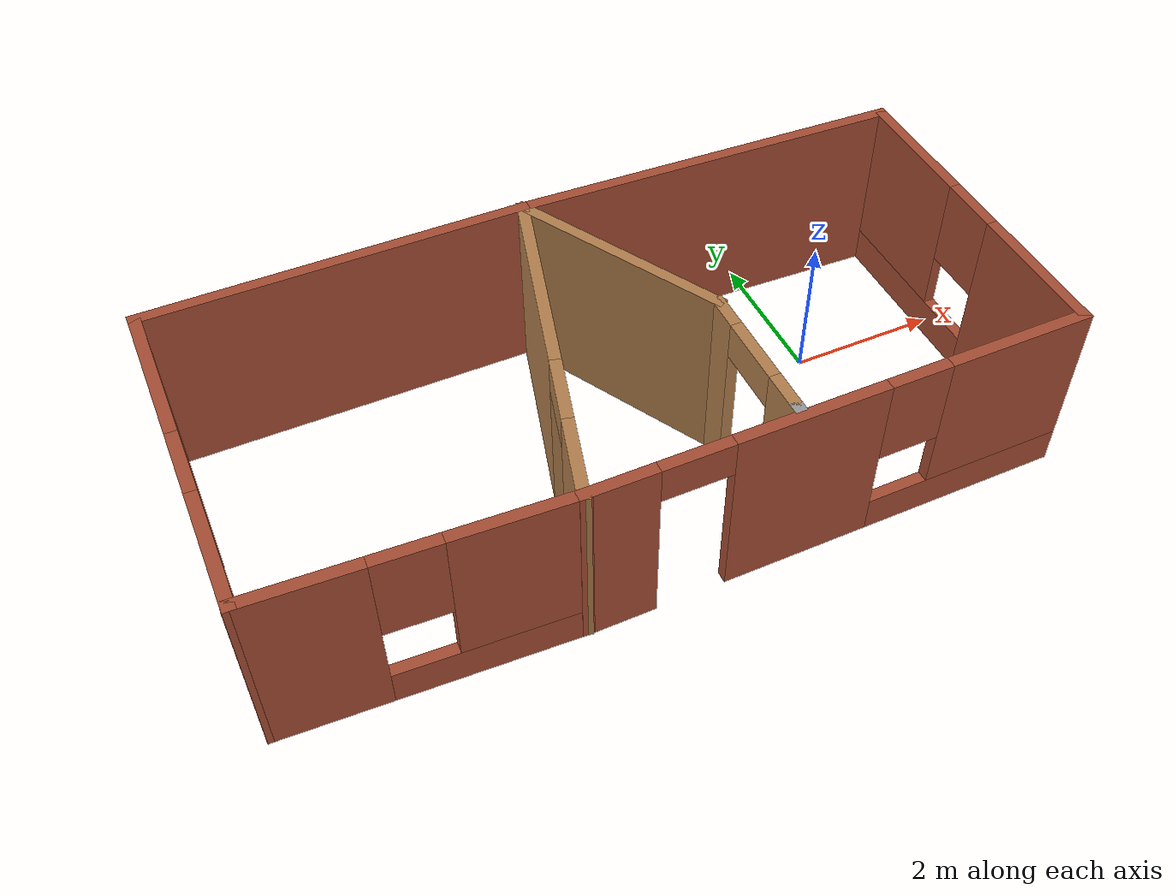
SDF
<?xml version='1.0'?>
<sdf version='1.6'>
  <model name='Building'>
    <pose frame=''>-3.08248 -0.442709 0 0 -0 0</pose>
    <link name='Wall_0'>
      <pose frame=''>-0.74947 -0.00521 0 0 0 -1.82746</pose>
      <visual name='Wall_0_Visual_0'>
        <pose frame=''>-1.02031 0 1.25 0 -0 0</pose>
        <geometry>
          <box>
            <size>2.79932 0.15 2.5</size>
          </box>
        </geometry>
        <material>
          <script>
            <uri>file://media/materials/scripts/gazebo.material</uri>
            <name>Gazebo/Wood</name>
          </script>
          <ambient>1 0.764706 0.305882 1</ambient>
        </material>
        <meta>
          <layer>0</layer>
        </meta>
      </visual>
      <collision name='Wall_0_Collision_0'>
        <geometry>
          <box>
            <size>2.79932 0.15 2.5</size>
          </box>
        </geometry>
        <pose frame=''>-1.02031 0 1.25 0 -0 0</pose>
      </collision>
      <visual name='Wall_0_Visual_1'>
        <pose frame=''>1.84966 0 1.25 0 -0 0</pose>
        <geometry>
          <box>
            <size>1.14062 0.15 2.5</size>
          </box>
        </geometry>
        <material>
          <script>
            <uri>file://media/materials/scripts/gazebo.material</uri>
            <name>Gazebo/Wood</name>
          </script>
          <ambient>1 0.764706 0.305882 1</ambient>
        </material>
        <meta>
          <layer>0</layer>
        </meta>
      </visual>
      <collision name='Wall_0_Collision_1'>
        <geometry>
          <box>
            <size>1.14062 0.15 2.5</size>
          </box>
        </geometry>
        <pose frame=''>1.84966 0 1.25 0 -0 0</pose>
      </collision>
      <visual name='Wall_0_Visual_2'>
        <pose frame=''>0.829352 0 2.25 0 -0 0</pose>
        <geometry>
          <box>
            <size>0.9 0.15 0.5</size>
          </box>
        </geometry>
        <material>
          <script>
            <uri>file://media/materials/scripts/gazebo.material</uri>
            <name>Gazebo/Wood</name>
          </script>
          <ambient>1 0.764706 0.305882 1</ambient>
        </material>
        <meta>
          <layer>0</layer>
        </meta>
      </visual>
      <collision name='Wall_0_Collision_2'>
        <geometry>
          <box>
            <size>0.9 0.15 0.5</size>
          </box>
        </geometry>
        <pose frame=''>0.829352 0 2.25 0 -0 0</pose>
      </collision>
    </link>
    <link name='Wall_1'>
      <pose frame=''>1.83025 -2.27336 0 0 -0 0</pose>
      <visual name='Wall_1_Visual_0'>
        <pose frame=''>-2.78114 0 1.25 0 -0 0</pose>
        <geometry>
          <box>
            <size>0.93771 0.15 2.5</size>
          </box>
        </geometry>
        <material>
          <script>
            <uri>file://media/materials/scripts/gazebo.material</uri>
            <name>Gazebo/Bricks</name>
          </script>
          <ambient>0.435294 0.796078 0.67451 1</ambient>
        </material>
        <meta>
          <layer>0</layer>
        </meta>
      </visual>
      <collision name='Wall_1_Collision_0'>
        <geometry>
          <box>
            <size>0.93771 0.15 2.5</size>
          </box>
        </geometry>
        <pose frame=''>-2.78114 0 1.25 0 -0 0</pose>
      </collision>
      <visual name='Wall_1_Visual_1'>
        <pose frame=''>-0.440127 0 1.25 0 -0 0</pose>
        <geometry>
          <box>
            <size>1.94433 0.15 2.5</size>
          </box>
        </geometry>
        <material>
          <script>
            <uri>file://media/materials/scripts/gazebo.material</uri>
            <name>Gazebo/Bricks</name>
          </script>
          <ambient>0.435294 0.796078 0.67451 1</ambient>
        </material>
        <meta>
          <layer>0</layer>
        </meta>
      </visual>
      <collision name='Wall_1_Collision_1'>
        <geometry>
          <box>
            <size>1.94433 0.15 2.5</size>
          </box>
        </geometry>
        <pose frame=''>-0.440127 0 1.25 0 -0 0</pose>
      </collision>
      <visual name='Wall_1_Visual_2'>
        <pose frame=''>1.89102 0 0.25 0 -0 0</pose>
        <geometry>
          <box>
            <size>2.71796 0.15 0.5</size>
          </box>
        </geometry>
        <material>
          <script>
            <uri>file://media/materials/scripts/gazebo.material</uri>
            <name>Gazebo/Bricks</name>
          </script>
          <ambient>0.435294 0.796078 0.67451 1</ambient>
        </material>
        <meta>
          <layer>0</layer>
        </meta>
      </visual>
      <collision name='Wall_1_Collision_2'>
        <geometry>
          <box>
            <size>2.71796 0.15 0.5</size>
          </box>
        </geometry>
        <pose frame=''>1.89102 0 0.25 0 -0 0</pose>
      </collision>
      <visual name='Wall_1_Visual_3'>
        <pose frame=''>2.29102 0 1.5 0 -0 0</pose>
        <geometry>
          <box>
            <size>1.91796 0.15 2</size>
          </box>
        </geometry>
        <material>
          <script>
            <uri>file://media/materials/scripts/gazebo.material</uri>
            <name>Gazebo/Bricks</name>
          </script>
          <ambient>0.435294 0.796078 0.67451 1</ambient>
        </material>
        <meta>
          <layer>0</layer>
        </meta>
      </visual>
      <collision name='Wall_1_Collision_3'>
        <geometry>
          <box>
            <size>1.91796 0.15 2</size>
          </box>
        </geometry>
        <pose frame=''>2.29102 0 1.5 0 -0 0</pose>
      </collision>
      <visual name='Wall_1_Visual_4'>
        <pose frame=''>0.932036 0 1.9 0 -0 0</pose>
        <geometry>
          <box>
            <size>0.8 0.15 1.2</size>
          </box>
        </geometry>
        <material>
          <script>
            <uri>file://media/materials/scripts/gazebo.material</uri>
            <name>Gazebo/Bricks</name>
          </script>
          <ambient>0.435294 0.796078 0.67451 1</ambient>
        </material>
        <meta>
          <layer>0</layer>
        </meta>
      </visual>
      <collision name='Wall_1_Collision_4'>
        <geometry>
          <box>
            <size>0.8 0.15 1.2</size>
          </box>
        </geometry>
        <pose frame=''>0.932036 0 1.9 0 -0 0</pose>
      </collision>
      <visual name='Wall_1_Visual_5'>
        <pose frame=''>-1.86229 0 2.25 0 -0 0</pose>
        <geometry>
          <box>
            <size>0.9 0.15 0.5</size>
          </box>
        </geometry>
        <material>
          <script>
            <uri>file://media/materials/scripts/gazebo.material</uri>
            <name>Gazebo/Bricks</name>
          </script>
          <ambient>0.435294 0.796078 0.67451 1</ambient>
        </material>
        <meta>
          <layer>0</layer>
        </meta>
      </visual>
      <collision name='Wall_1_Collision_5'>
        <geometry>
          <box>
            <size>0.9 0.15 0.5</size>
          </box>
        </geometry>
        <pose frame=''>-1.86229 0 2.25 0 -0 0</pose>
      </collision>
    </link>
    <link name='Wall_12'>
      <collision name='Wall_12_Collision'>
        <geometry>
          <box>
            <size>5 0.15 2.5</size>
          </box>
        </geometry>
        <pose frame=''>0 0 1.25 0 -0 0</pose>
      </collision>
      <visual name='Wall_12_Visual'>
        <pose frame=''>0 0 1.25 0 -0 0</pose>
        <geometry>
          <box>
            <size>5 0.15 2.5</size>
          </box>
        </geometry>
        <material>
          <script>
            <uri>file://media/materials/scripts/gazebo.material</uri>
            <name>Gazebo/Bricks</name>
          </script>
          <ambient>0.435294 0.796078 0.67451 1</ambient>
        </material>
        <meta>
          <layer>0</layer>
        </meta>
      </visual>
      <pose frame=''>-2.57919 2.26294 0 0 -0 3.14159</pose>
    </link>
    <link name='Wall_13'>
      <pose frame=''>-5.00419 0.087943 0 0 0 -1.5708</pose>
      <visual name='Wall_13_Visual_0'>
        <pose frame=''>-1.25822 0 1.25 0 -0 0</pose>
        <geometry>
          <box>
            <size>1.98357 0.15 2.5</size>
          </box>
        </geometry>
        <material>
          <script>
            <uri>file://media/materials/scripts/gazebo.material</uri>
            <name>Gazebo/Bricks</name>
          </script>
          <ambient>0.435294 0.796078 0.67451 1</ambient>
        </material>
        <meta>
          <layer>0</layer>
        </meta>
      </visual>
      <collision name='Wall_13_Collision_0'>
        <geometry>
          <box>
            <size>1.98357 0.15 2.5</size>
          </box>
        </geometry>
        <pose frame=''>-1.25822 0 1.25 0 -0 0</pose>
      </collision>
      <visual name='Wall_13_Visual_1'>
        <pose frame=''>1.44179 0 1.25 0 -0 0</pose>
        <geometry>
          <box>
            <size>1.61643 0.15 2.5</size>
          </box>
        </geometry>
        <material>
          <script>
            <uri>file://media/materials/scripts/gazebo.material</uri>
            <name>Gazebo/Bricks</name>
          </script>
          <ambient>0.435294 0.796078 0.67451 1</ambient>
        </material>
        <meta>
          <layer>0</layer>
        </meta>
      </visual>
      <collision name='Wall_13_Collision_1'>
        <geometry>
          <box>
            <size>1.61643 0.15 2.5</size>
          </box>
        </geometry>
        <pose frame=''>1.44179 0 1.25 0 -0 0</pose>
      </collision>
      <visual name='Wall_13_Visual_2'>
        <pose frame=''>0.183571 0 2.25 0 -0 0</pose>
        <geometry>
          <box>
            <size>0.9 0.15 0.5</size>
          </box>
        </geometry>
        <material>
          <script>
            <uri>file://media/materials/scripts/gazebo.material</uri>
            <name>Gazebo/Bricks</name>
          </script>
          <ambient>0.435294 0.796078 0.67451 1</ambient>
        </material>
        <meta>
          <layer>0</layer>
        </meta>
      </visual>
      <collision name='Wall_13_Collision_2'>
        <geometry>
          <box>
            <size>0.9 0.15 0.5</size>
          </box>
        </geometry>
        <pose frame=''>0.183571 0 2.25 0 -0 0</pose>
      </collision>
    </link>
    <link name='Wall_14'>
      <pose frame=''>-3.17447 -2.18021 0 0 0 -0.050867</pose>
      <visual name='Wall_14_Visual_0'>
        <pose frame=''>-1.18713 0 1.25 0 -0 0</pose>
        <geometry>
          <box>
            <size>1.43991 0.15 2.5</size>
          </box>
        </geometry>
        <material>
          <script>
            <uri>file://media/materials/scripts/gazebo.material</uri>
            <name>Gazebo/Bricks</name>
          </script>
          <ambient>0.435294 0.796078 0.67451 1</ambient>
        </material>
        <meta>
          <layer>0</layer>
        </meta>
      </visual>
      <collision name='Wall_14_Collision_0'>
        <geometry>
          <box>
            <size>1.43991 0.15 2.5</size>
          </box>
        </geometry>
        <pose frame=''>-1.18713 0 1.25 0 -0 0</pose>
      </collision>
      <visual name='Wall_14_Visual_1'>
        <pose frame=''>0.719954 0 0.25 0 -0 0</pose>
        <geometry>
          <box>
            <size>2.37426 0.15 0.5</size>
          </box>
        </geometry>
        <material>
          <script>
            <uri>file://media/materials/scripts/gazebo.material</uri>
            <name>Gazebo/Bricks</name>
          </script>
          <ambient>0.435294 0.796078 0.67451 1</ambient>
        </material>
        <meta>
          <layer>0</layer>
        </meta>
      </visual>
      <collision name='Wall_14_Collision_1'>
        <geometry>
          <box>
            <size>2.37426 0.15 0.5</size>
          </box>
        </geometry>
        <pose frame=''>0.719954 0 0.25 0 -0 0</pose>
      </collision>
      <visual name='Wall_14_Visual_2'>
        <pose frame=''>1.11995 0 1.5 0 -0 0</pose>
        <geometry>
          <box>
            <size>1.57426 0.15 2</size>
          </box>
        </geometry>
        <material>
          <script>
            <uri>file://media/materials/scripts/gazebo.material</uri>
            <name>Gazebo/Bricks</name>
          </script>
          <ambient>0.435294 0.796078 0.67451 1</ambient>
        </material>
        <meta>
          <layer>0</layer>
        </meta>
      </visual>
      <collision name='Wall_14_Collision_2'>
        <geometry>
          <box>
            <size>1.57426 0.15 2</size>
          </box>
        </geometry>
        <pose frame=''>1.11995 0 1.5 0 -0 0</pose>
      </collision>
      <visual name='Wall_14_Visual_3'>
        <pose frame=''>-0.067178 0 1.9 0 -0 0</pose>
        <geometry>
          <box>
            <size>0.8 0.15 1.2</size>
          </box>
        </geometry>
        <material>
          <script>
            <uri>file://media/materials/scripts/gazebo.material</uri>
            <name>Gazebo/Bricks</name>
          </script>
          <ambient>0.435294 0.796078 0.67451 1</ambient>
        </material>
        <meta>
          <layer>0</layer>
        </meta>
      </visual>
      <collision name='Wall_14_Collision_3'>
        <geometry>
          <box>
            <size>0.8 0.15 1.2</size>
          </box>
        </geometry>
        <pose frame=''>-0.067178 0 1.9 0 -0 0</pose>
      </collision>
    </link>
    <link name='Wall_2'>
      <pose frame=''>5.00525 -0.098364 0 0 -0 1.5708</pose>
      <visual name='Wall_2_Visual_0'>
        <pose frame=''>-1.30717 0 1.25 0 -0 0</pose>
        <geometry>
          <box>
            <size>1.88565 0.15 2.5</size>
          </box>
        </geometry>
        <material>
          <script>
            <uri>file://media/materials/scripts/gazebo.material</uri>
            <name>Gazebo/Bricks</name>
          </script>
          <ambient>0.435294 0.796078 0.67451 1</ambient>
        </material>
        <meta>
          <layer>0</layer>
        </meta>
      </visual>
      <collision name='Wall_2_Collision_0'>
        <geometry>
          <box>
            <size>1.88565 0.15 2.5</size>
          </box>
        </geometry>
        <pose frame=''>-1.30717 0 1.25 0 -0 0</pose>
      </collision>
      <visual name='Wall_2_Visual_1'>
        <pose frame=''>0.942826 0 0.25 0 -0 0</pose>
        <geometry>
          <box>
            <size>2.61435 0.15 0.5</size>
          </box>
        </geometry>
        <material>
          <script>
            <uri>file://media/materials/scripts/gazebo.material</uri>
            <name>Gazebo/Bricks</name>
          </script>
          <ambient>0.435294 0.796078 0.67451 1</ambient>
        </material>
        <meta>
          <layer>0</layer>
        </meta>
      </visual>
      <collision name='Wall_2_Collision_1'>
        <geometry>
          <box>
            <size>2.61435 0.15 0.5</size>
          </box>
        </geometry>
        <pose frame=''>0.942826 0 0.25 0 -0 0</pose>
      </collision>
      <visual name='Wall_2_Visual_2'>
        <pose frame=''>1.34283 0 1.5 0 -0 0</pose>
        <geometry>
          <box>
            <size>1.81435 0.15 2</size>
          </box>
        </geometry>
        <material>
          <script>
            <uri>file://media/materials/scripts/gazebo.material</uri>
            <name>Gazebo/Bricks</name>
          </script>
          <ambient>0.435294 0.796078 0.67451 1</ambient>
        </material>
        <meta>
          <layer>0</layer>
        </meta>
      </visual>
      <collision name='Wall_2_Collision_2'>
        <geometry>
          <box>
            <size>1.81435 0.15 2</size>
          </box>
        </geometry>
        <pose frame=''>1.34283 0 1.5 0 -0 0</pose>
      </collision>
      <visual name='Wall_2_Visual_3'>
        <pose frame=''>0.035652 0 1.9 0 -0 0</pose>
        <geometry>
          <box>
            <size>0.8 0.15 1.2</size>
          </box>
        </geometry>
        <material>
          <script>
            <uri>file://media/materials/scripts/gazebo.material</uri>
            <name>Gazebo/Bricks</name>
          </script>
          <ambient>0.435294 0.796078 0.67451 1</ambient>
        </material>
        <meta>
          <layer>0</layer>
        </meta>
      </visual>
      <collision name='Wall_2_Collision_3'>
        <geometry>
          <box>
            <size>0.8 0.15 1.2</size>
          </box>
        </geometry>
        <pose frame=''>0.035652 0 1.9 0 -0 0</pose>
      </collision>
    </link>
    <link name='Wall_3'>
      <collision name='Wall_3_Collision'>
        <geometry>
          <box>
            <size>5.3128 0.15 2.5</size>
          </box>
        </geometry>
        <pose frame=''>0 0 1.25 0 -0 0</pose>
      </collision>
      <visual name='Wall_3_Visual'>
        <pose frame=''>0 0 1.25 0 -0 0</pose>
        <geometry>
          <box>
            <size>5.3128 0.15 2.5</size>
          </box>
        </geometry>
        <material>
          <script>
            <uri>file://media/materials/scripts/gazebo.material</uri>
            <name>Gazebo/Bricks</name>
          </script>
          <ambient>0.435294 0.796078 0.67451 1</ambient>
        </material>
        <meta>
          <layer>0</layer>
        </meta>
      </visual>
      <pose frame=''>2.42553 2.16979 0 0 -0 3.1055</pose>
    </link>
    <link name='Wall_4'>
      <collision name='Wall_4_Collision'>
        <geometry>
          <box>
            <size>3.08095 0.15 2.5</size>
          </box>
        </geometry>
        <pose frame=''>0 0 1.25 0 -0 0</pose>
      </collision>
      <visual name='Wall_4_Visual'>
        <pose frame=''>0 0 1.25 0 -0 0</pose>
        <geometry>
          <box>
            <size>3.08095 0.15 2.5</size>
          </box>
        </geometry>
        <material>
          <script>
            <uri>file://media/materials/scripts/gazebo.material</uri>
            <name>Gazebo/Wood</name>
          </script>
          <ambient>1 0.764706 0.305882 1</ambient>
        </material>
        <meta>
          <layer>0</layer>
        </meta>
      </visual>
      <pose frame=''>0.558313 0.982333 0 0 0 -1.06307</pose>
    </link>
    <link name='Wall_5'>
      <pose frame=''>1.27081 -1.22328 0 0 0 -1.5708</pose>
      <visual name='Wall_5_Visual_0'>
        <pose frame=''>-0.75216 0 1.25 0 -0 0</pose>
        <geometry>
          <box>
            <size>0.49568 0.15 2.5</size>
          </box>
        </geometry>
        <material>
          <script>
            <uri>file://media/materials/scripts/gazebo.material</uri>
            <name>Gazebo/Wood</name>
          </script>
          <ambient>1 0.764706 0.305882 1</ambient>
        </material>
        <meta>
          <layer>0</layer>
        </meta>
      </visual>
      <collision name='Wall_5_Collision_0'>
        <geometry>
          <box>
            <size>0.49568 0.15 2.5</size>
          </box>
        </geometry>
        <pose frame=''>-0.75216 0 1.25 0 -0 0</pose>
      </collision>
      <visual name='Wall_5_Visual_1'>
        <pose frame=''>0.69784 0 1.25 0 -0 0</pose>
        <geometry>
          <box>
            <size>0.60432 0.15 2.5</size>
          </box>
        </geometry>
        <material>
          <script>
            <uri>file://media/materials/scripts/gazebo.material</uri>
            <name>Gazebo/Wood</name>
          </script>
          <ambient>1 0.764706 0.305882 1</ambient>
        </material>
        <meta>
          <layer>0</layer>
        </meta>
      </visual>
      <collision name='Wall_5_Collision_1'>
        <geometry>
          <box>
            <size>0.60432 0.15 2.5</size>
          </box>
        </geometry>
        <pose frame=''>0.69784 0 1.25 0 -0 0</pose>
      </collision>
      <visual name='Wall_5_Visual_2'>
        <pose frame=''>-0.05432 0 2.25 0 -0 0</pose>
        <geometry>
          <box>
            <size>0.9 0.15 0.5</size>
          </box>
        </geometry>
        <material>
          <script>
            <uri>file://media/materials/scripts/gazebo.material</uri>
            <name>Gazebo/Wood</name>
          </script>
          <ambient>1 0.764706 0.305882 1</ambient>
        </material>
        <meta>
          <layer>0</layer>
        </meta>
      </visual>
      <collision name='Wall_5_Collision_2'>
        <geometry>
          <box>
            <size>0.9 0.15 0.5</size>
          </box>
        </geometry>
        <pose frame=''>-0.05432 0 2.25 0 -0 0</pose>
      </collision>
    </link>
    <link name='Wall_6'>
      <collision name='Wall_6_Collision'>
        <geometry>
          <box>
            <size>0.15 0.15 2.5</size>
          </box>
        </geometry>
        <pose frame=''>0 0 1.25 0 -0 0</pose>
      </collision>
      <visual name='Wall_6_Visual'>
        <pose frame=''>0 0 1.25 0 -0 0</pose>
        <geometry>
          <box>
            <size>0.15 0.15 2.5</size>
          </box>
        </geometry>
        <material>
          <script>
            <uri>file://media/materials/scripts/gazebo.material</uri>
            <name>Gazebo/Grey</name>
          </script>
          <ambient>1 1 1 1</ambient>
        </material>
        <meta>
          <layer>0</layer>
        </meta>
      </visual>
      <pose frame=''>1.27081 -2.14828 0 0 -0 0</pose>
    </link>
    <static>1</static>
  </model>
</sdf>
